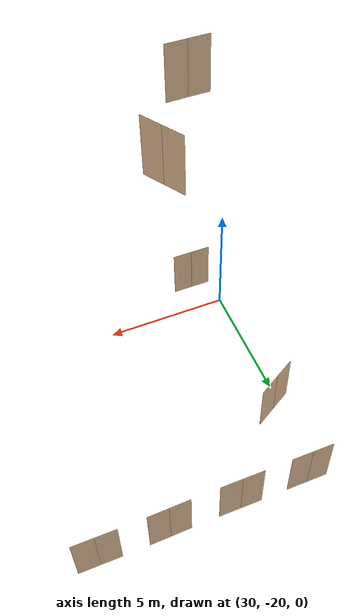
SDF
<sdf version="1.7">
 <world name="sim_world">
  <model name="part1_5">
   <pose>30.62381580076393 -10.732564106341501 0.0 0 0 3.1325331828849774</pose>
   <link name="right">
    <pose>0.4033982302911093 0 1.11 0 0 0</pose>
    <visual name="right_visual">
     <geometry><box><size>0.7967964605822186 0.03 2.2</size></box></geometry>
     <material>
      <ambient>0.5 0.25 0 0.6</ambient>
      <diffuse>0.5 0.25 0 0.6</diffuse>
      <pbr><metal><metalness>0.0</metalness></metal></pbr>
     </material>
    </visual>
    <collision name="right_collision">
     <geometry><box><size>0.7967964605822186 0.03 2.2</size></box></geometry>
     <surface><contact><collide_bitmask>0x02</collide_bitmask></contact></surface>
    </collision>
    <inertial>
     <mass>50.0</mass>
     <inertia><ixx>20.17041666666667</ixx><iyy>22.8120191649848</iyy><izz>2.64910249831813</izz></inertia>
    </inertial>
   </link>
   <joint name="right_joint" type="revolute">
    <parent>world</parent>
    <child>right</child>
    <axis><xyz>0 0 1</xyz><limit><lower>0</lower><upper>1.57</upper></limit></axis>
    <pose>0.4033982302911093 0 0 0 0 0</pose>
   </joint>
   <link name="left">
    <pose>-0.4033982302911093 0 1.11 0 0 0</pose>
    <visual name="left_visual">
     <geometry><box><size>0.7967964605822186 0.03 2.2</size></box></geometry>
     <material>
      <ambient>0.5 0.25 0 0.6</ambient>
      <diffuse>0.5 0.25 0 0.6</diffuse>
      <pbr><metal><metalness>0.0</metalness></metal></pbr>
     </material>
    </visual>
    <collision name="left_collision">
     <geometry><box><size>0.7967964605822186 0.03 2.2</size></box></geometry>
     <surface><contact><collide_bitmask>0x02</collide_bitmask></contact></surface>
    </collision>
    <inertial>
     <mass>50.0</mass>
     <inertia><ixx>20.17041666666667</ixx><iyy>22.8120191649848</iyy><izz>2.64910249831813</izz></inertia>
    </inertial>
   </link>
   <joint name="left_joint" type="revolute">
    <parent>world</parent>
    <child>left</child>
    <axis><xyz>0 0 1</xyz><limit><lower>-1.57</lower><upper>0</upper></limit></axis>
    <pose>-0.4033982302911093 0 0 0 0 0</pose>
   </joint>
   <plugin name="register_component" filename="libregister_component.so">
    <component name="Door">
     <v_max_door>0.5</v_max_door>
     <a_max_door>0.3</a_max_door>
     <a_nom_door>0.15</a_nom_door>
     <dx_min_door>0.01</dx_min_door>
     <f_max_door>500.0</f_max_door>
     <ros_interface>true</ros_interface>
     <door name="part1_5" type="DoubleSwingDoor" left_joint_name="left_joint" right_joint_name="right_joint"/>
    </component>
   </plugin>
  </model>
  <model name="part1_6">
   <pose>33.303837845168346 -10.745754091436014 0.0 0 0 3.134548012368475</pose>
   <link name="right">
    <pose>0.4174083984026789 0 1.11 0 0 0</pose>
    <visual name="right_visual">
     <geometry><box><size>0.8248167968053578 0.03 2.2</size></box></geometry>
     <material>
      <ambient>0.5 0.25 0 0.6</ambient>
      <diffuse>0.5 0.25 0 0.6</diffuse>
      <pbr><metal><metalness>0.0</metalness></metal></pbr>
     </material>
    </visual>
    <collision name="right_collision">
     <geometry><box><size>0.8248167968053578 0.03 2.2</size></box></geometry>
     <surface><contact><collide_bitmask>0x02</collide_bitmask></contact></surface>
    </collision>
    <inertial>
     <mass>50.0</mass>
     <inertia><ixx>20.17041666666667</ixx><iyy>23.001344784551048</iyy><izz>2.838428117884379</izz></inertia>
    </inertial>
   </link>
   <joint name="right_joint" type="revolute">
    <parent>world</parent>
    <child>right</child>
    <axis><xyz>0 0 1</xyz><limit><lower>0</lower><upper>1.57</upper></limit></axis>
    <pose>0.4174083984026789 0 0 0 0 0</pose>
   </joint>
   <link name="left">
    <pose>-0.4174083984026789 0 1.11 0 0 0</pose>
    <visual name="left_visual">
     <geometry><box><size>0.8248167968053578 0.03 2.2</size></box></geometry>
     <material>
      <ambient>0.5 0.25 0 0.6</ambient>
      <diffuse>0.5 0.25 0 0.6</diffuse>
      <pbr><metal><metalness>0.0</metalness></metal></pbr>
     </material>
    </visual>
    <collision name="left_collision">
     <geometry><box><size>0.8248167968053578 0.03 2.2</size></box></geometry>
     <surface><contact><collide_bitmask>0x02</collide_bitmask></contact></surface>
    </collision>
    <inertial>
     <mass>50.0</mass>
     <inertia><ixx>20.17041666666667</ixx><iyy>23.001344784551048</iyy><izz>2.838428117884379</izz></inertia>
    </inertial>
   </link>
   <joint name="left_joint" type="revolute">
    <parent>world</parent>
    <child>left</child>
    <axis><xyz>0 0 1</xyz><limit><lower>-1.57</lower><upper>0</upper></limit></axis>
    <pose>-0.4174083984026789 0 0 0 0 0</pose>
   </joint>
   <plugin name="register_component" filename="libregister_component.so">
    <component name="Door">
     <v_max_door>0.5</v_max_door>
     <a_max_door>0.3</a_max_door>
     <a_nom_door>0.15</a_nom_door>
     <dx_min_door>0.01</dx_min_door>
     <f_max_door>500.0</f_max_door>
     <ros_interface>true</ros_interface>
     <door name="part1_6" type="DoubleSwingDoor" left_joint_name="left_joint" right_joint_name="right_joint"/>
    </component>
   </plugin>
  </model>
  <model name="part1_7">
   <pose>35.98657169916032 -10.742288109951325 0.0 0 0 -3.1297649534100933</pose>
   <link name="right">
    <pose>0.3951374930538005 0 1.11 0 0 0</pose>
    <visual name="right_visual">
     <geometry><box><size>0.780274986107601 0.03 2.2</size></box></geometry>
     <material>
      <ambient>0.5 0.25 0 0.6</ambient>
      <diffuse>0.5 0.25 0 0.6</diffuse>
      <pbr><metal><metalness>0.0</metalness></metal></pbr>
     </material>
    </visual>
    <collision name="right_collision">
     <geometry><box><size>0.780274986107601 0.03 2.2</size></box></geometry>
     <surface><contact><collide_bitmask>0x02</collide_bitmask></contact></surface>
    </collision>
    <inertial>
     <mass>50.0</mass>
     <inertia><ixx>20.17041666666667</ixx><iyy>22.70345439143841</iyy><izz>2.540537724771738</izz></inertia>
    </inertial>
   </link>
   <joint name="right_joint" type="revolute">
    <parent>world</parent>
    <child>right</child>
    <axis><xyz>0 0 1</xyz><limit><lower>0</lower><upper>1.57</upper></limit></axis>
    <pose>0.3951374930538005 0 0 0 0 0</pose>
   </joint>
   <link name="left">
    <pose>-0.3951374930538005 0 1.11 0 0 0</pose>
    <visual name="left_visual">
     <geometry><box><size>0.780274986107601 0.03 2.2</size></box></geometry>
     <material>
      <ambient>0.5 0.25 0 0.6</ambient>
      <diffuse>0.5 0.25 0 0.6</diffuse>
      <pbr><metal><metalness>0.0</metalness></metal></pbr>
     </material>
    </visual>
    <collision name="left_collision">
     <geometry><box><size>0.780274986107601 0.03 2.2</size></box></geometry>
     <surface><contact><collide_bitmask>0x02</collide_bitmask></contact></surface>
    </collision>
    <inertial>
     <mass>50.0</mass>
     <inertia><ixx>20.17041666666667</ixx><iyy>22.70345439143841</iyy><izz>2.540537724771738</izz></inertia>
    </inertial>
   </link>
   <joint name="left_joint" type="revolute">
    <parent>world</parent>
    <child>left</child>
    <axis><xyz>0 0 1</xyz><limit><lower>-1.57</lower><upper>0</upper></limit></axis>
    <pose>-0.3951374930538005 0 0 0 0 0</pose>
   </joint>
   <plugin name="register_component" filename="libregister_component.so">
    <component name="Door">
     <v_max_door>0.5</v_max_door>
     <a_max_door>0.3</a_max_door>
     <a_nom_door>0.15</a_nom_door>
     <dx_min_door>0.01</dx_min_door>
     <f_max_door>500.0</f_max_door>
     <ros_interface>true</ros_interface>
     <door name="part1_7" type="DoubleSwingDoor" left_joint_name="left_joint" right_joint_name="right_joint"/>
    </component>
   </plugin>
  </model>
  <model name="part1_8">
   <pose>38.57675903364792 -10.742207878898437 0.0 0 0 3.1300311442483824</pose>
   <link name="right">
    <pose>0.40076484747594776 0 1.11 0 0 0</pose>
    <visual name="right_visual">
     <geometry><box><size>0.7915296949518955 0.03 2.2</size></box></geometry>
     <material>
      <ambient>0.5 0.25 0 0.6</ambient>
      <diffuse>0.5 0.25 0 0.6</diffuse>
      <pbr><metal><metalness>0.0</metalness></metal></pbr>
     </material>
    </visual>
    <collision name="right_collision">
     <geometry><box><size>0.7915296949518955 0.03 2.2</size></box></geometry>
     <surface><contact><collide_bitmask>0x02</collide_bitmask></contact></surface>
    </collision>
    <inertial>
     <mass>50.0</mass>
     <inertia><ixx>20.17041666666667</ixx><iyy>22.777163574961005</iyy><izz>2.6142469082943367</izz></inertia>
    </inertial>
   </link>
   <joint name="right_joint" type="revolute">
    <parent>world</parent>
    <child>right</child>
    <axis><xyz>0 0 1</xyz><limit><lower>0</lower><upper>1.57</upper></limit></axis>
    <pose>0.40076484747594776 0 0 0 0 0</pose>
   </joint>
   <link name="left">
    <pose>-0.40076484747594776 0 1.11 0 0 0</pose>
    <visual name="left_visual">
     <geometry><box><size>0.7915296949518955 0.03 2.2</size></box></geometry>
     <material>
      <ambient>0.5 0.25 0 0.6</ambient>
      <diffuse>0.5 0.25 0 0.6</diffuse>
      <pbr><metal><metalness>0.0</metalness></metal></pbr>
     </material>
    </visual>
    <collision name="left_collision">
     <geometry><box><size>0.7915296949518955 0.03 2.2</size></box></geometry>
     <surface><contact><collide_bitmask>0x02</collide_bitmask></contact></surface>
    </collision>
    <inertial>
     <mass>50.0</mass>
     <inertia><ixx>20.17041666666667</ixx><iyy>22.777163574961005</iyy><izz>2.6142469082943367</izz></inertia>
    </inertial>
   </link>
   <joint name="left_joint" type="revolute">
    <parent>world</parent>
    <child>left</child>
    <axis><xyz>0 0 1</xyz><limit><lower>-1.57</lower><upper>0</upper></limit></axis>
    <pose>-0.40076484747594776 0 0 0 0 0</pose>
   </joint>
   <plugin name="register_component" filename="libregister_component.so">
    <component name="Door">
     <v_max_door>0.5</v_max_door>
     <a_max_door>0.3</a_max_door>
     <a_nom_door>0.15</a_nom_door>
     <dx_min_door>0.01</dx_min_door>
     <f_max_door>500.0</f_max_door>
     <ros_interface>true</ros_interface>
     <door name="part1_8" type="DoubleSwingDoor" left_joint_name="left_joint" right_joint_name="right_joint"/>
    </component>
   </plugin>
  </model>
  <model name="part1_4">
   <pose>30.361404096088606 -14.032708004714948 0.0 0 0 -2.62655505252304</pose>
   <link name="right">
    <pose>0.4545178244978947 0 1.11 0 0 0</pose>
    <visual name="right_visual">
     <geometry><box><size>0.8990356489957894 0.03 2.2</size></box></geometry>
     <material>
      <ambient>0.5 0.25 0 0.6</ambient>
      <diffuse>0.5 0.25 0 0.6</diffuse>
      <pbr><metal><metalness>0.0</metalness></metal></pbr>
     </material>
    </visual>
    <collision name="right_collision">
     <geometry><box><size>0.8990356489957894 0.03 2.2</size></box></geometry>
     <surface><contact><collide_bitmask>0x02</collide_bitmask></contact></surface>
    </collision>
    <inertial>
     <mass>50.0</mass>
     <inertia><ixx>20.17041666666667</ixx><iyy>23.534437909022003</iyy><izz>3.371521242355334</izz></inertia>
    </inertial>
   </link>
   <joint name="right_joint" type="revolute">
    <parent>world</parent>
    <child>right</child>
    <axis><xyz>0 0 1</xyz><limit><lower>0</lower><upper>1.57</upper></limit></axis>
    <pose>0.4545178244978947 0 0 0 0 0</pose>
   </joint>
   <link name="left">
    <pose>-0.4545178244978947 0 1.11 0 0 0</pose>
    <visual name="left_visual">
     <geometry><box><size>0.8990356489957894 0.03 2.2</size></box></geometry>
     <material>
      <ambient>0.5 0.25 0 0.6</ambient>
      <diffuse>0.5 0.25 0 0.6</diffuse>
      <pbr><metal><metalness>0.0</metalness></metal></pbr>
     </material>
    </visual>
    <collision name="left_collision">
     <geometry><box><size>0.8990356489957894 0.03 2.2</size></box></geometry>
     <surface><contact><collide_bitmask>0x02</collide_bitmask></contact></surface>
    </collision>
    <inertial>
     <mass>50.0</mass>
     <inertia><ixx>20.17041666666667</ixx><iyy>23.534437909022003</iyy><izz>3.371521242355334</izz></inertia>
    </inertial>
   </link>
   <joint name="left_joint" type="revolute">
    <parent>world</parent>
    <child>left</child>
    <axis><xyz>0 0 1</xyz><limit><lower>-1.57</lower><upper>0</upper></limit></axis>
    <pose>-0.4545178244978947 0 0 0 0 0</pose>
   </joint>
   <plugin name="register_component" filename="libregister_component.so">
    <component name="Door">
     <v_max_door>0.5</v_max_door>
     <a_max_door>0.3</a_max_door>
     <a_nom_door>0.15</a_nom_door>
     <dx_min_door>0.01</dx_min_door>
     <f_max_door>500.0</f_max_door>
     <ros_interface>true</ros_interface>
     <door name="part1_4" type="DoubleSwingDoor" left_joint_name="left_joint" right_joint_name="right_joint"/>
    </component>
   </plugin>
  </model>
  <model name="part1_9">
   <pose>30.839613263712295 -21.2473811351495 0.0 0 0 -3.1402743417935888</pose>
   <link name="right">
    <pose>0.4016690922096701 0 1.11 0 0 0</pose>
    <visual name="right_visual">
     <geometry><box><size>0.7933381844193402 0.03 2.2</size></box></geometry>
     <material>
      <ambient>0.5 0.25 0 0.6</ambient>
      <diffuse>0.5 0.25 0 0.6</diffuse>
      <pbr><metal><metalness>0.0</metalness></metal></pbr>
     </material>
    </visual>
    <collision name="right_collision">
     <geometry><box><size>0.7933381844193402 0.03 2.2</size></box></geometry>
     <surface><contact><collide_bitmask>0x02</collide_bitmask></contact></surface>
    </collision>
    <inertial>
     <mass>50.0</mass>
     <inertia><ixx>20.17041666666667</ixx><iyy>22.789106145240737</iyy><izz>2.626189478574063</izz></inertia>
    </inertial>
   </link>
   <joint name="right_joint" type="revolute">
    <parent>world</parent>
    <child>right</child>
    <axis><xyz>0 0 1</xyz><limit><lower>0</lower><upper>1.57</upper></limit></axis>
    <pose>0.4016690922096701 0 0 0 0 0</pose>
   </joint>
   <link name="left">
    <pose>-0.4016690922096701 0 1.11 0 0 0</pose>
    <visual name="left_visual">
     <geometry><box><size>0.7933381844193402 0.03 2.2</size></box></geometry>
     <material>
      <ambient>0.5 0.25 0 0.6</ambient>
      <diffuse>0.5 0.25 0 0.6</diffuse>
      <pbr><metal><metalness>0.0</metalness></metal></pbr>
     </material>
    </visual>
    <collision name="left_collision">
     <geometry><box><size>0.7933381844193402 0.03 2.2</size></box></geometry>
     <surface><contact><collide_bitmask>0x02</collide_bitmask></contact></surface>
    </collision>
    <inertial>
     <mass>50.0</mass>
     <inertia><ixx>20.17041666666667</ixx><iyy>22.789106145240737</iyy><izz>2.626189478574063</izz></inertia>
    </inertial>
   </link>
   <joint name="left_joint" type="revolute">
    <parent>world</parent>
    <child>left</child>
    <axis><xyz>0 0 1</xyz><limit><lower>-1.57</lower><upper>0</upper></limit></axis>
    <pose>-0.4016690922096701 0 0 0 0 0</pose>
   </joint>
   <plugin name="register_component" filename="libregister_component.so">
    <component name="Door">
     <v_max_door>0.5</v_max_door>
     <a_max_door>0.3</a_max_door>
     <a_nom_door>0.15</a_nom_door>
     <dx_min_door>0.01</dx_min_door>
     <f_max_door>500.0</f_max_door>
     <ros_interface>true</ros_interface>
     <door name="part1_9" type="DoubleSwingDoor" left_joint_name="left_joint" right_joint_name="right_joint"/>
    </component>
   </plugin>
  </model>
  <model name="L3_part5_2">
   <pose>30.881842683412945 -21.220969909646946 10.0 0 0 -3.120648061489597</pose>
   <link name="right">
    <pose>0.4218044456970233 0 1.11 0 0 0</pose>
    <visual name="right_visual">
     <geometry><box><size>0.8336088913940466 0.03 2.2</size></box></geometry>
     <material>
      <ambient>0.5 0.25 0 0.6</ambient>
      <diffuse>0.5 0.25 0 0.6</diffuse>
      <pbr><metal><metalness>0.0</metalness></metal></pbr>
     </material>
    </visual>
    <collision name="right_collision">
     <geometry><box><size>0.8336088913940466 0.03 2.2</size></box></geometry>
     <surface><contact><collide_bitmask>0x02</collide_bitmask></contact></surface>
    </collision>
    <inertial>
     <mass>50.0</mass>
     <inertia><ixx>20.17041666666667</ixx><iyy>23.062099099213388</iyy><izz>2.899182432546714</izz></inertia>
    </inertial>
   </link>
   <joint name="right_joint" type="revolute">
    <parent>world</parent>
    <child>right</child>
    <axis><xyz>0 0 1</xyz><limit><lower>0</lower><upper>1.57</upper></limit></axis>
    <pose>0.4218044456970233 0 0 0 0 0</pose>
   </joint>
   <link name="left">
    <pose>-0.4218044456970233 0 1.11 0 0 0</pose>
    <visual name="left_visual">
     <geometry><box><size>0.8336088913940466 0.03 2.2</size></box></geometry>
     <material>
      <ambient>0.5 0.25 0 0.6</ambient>
      <diffuse>0.5 0.25 0 0.6</diffuse>
      <pbr><metal><metalness>0.0</metalness></metal></pbr>
     </material>
    </visual>
    <collision name="left_collision">
     <geometry><box><size>0.8336088913940466 0.03 2.2</size></box></geometry>
     <surface><contact><collide_bitmask>0x02</collide_bitmask></contact></surface>
    </collision>
    <inertial>
     <mass>50.0</mass>
     <inertia><ixx>20.17041666666667</ixx><iyy>23.062099099213388</iyy><izz>2.899182432546714</izz></inertia>
    </inertial>
   </link>
   <joint name="left_joint" type="revolute">
    <parent>world</parent>
    <child>left</child>
    <axis><xyz>0 0 1</xyz><limit><lower>-1.57</lower><upper>0</upper></limit></axis>
    <pose>-0.4218044456970233 0 0 0 0 0</pose>
   </joint>
   <plugin name="register_component" filename="libregister_component.so">
    <component name="Door">
     <v_max_door>0.5</v_max_door>
     <a_max_door>0.3</a_max_door>
     <a_nom_door>0.15</a_nom_door>
     <dx_min_door>0.01</dx_min_door>
     <f_max_door>500.0</f_max_door>
     <ros_interface>true</ros_interface>
     <door name="L3_part5_2" type="DoubleSwingDoor" left_joint_name="left_joint" right_joint_name="right_joint"/>
    </component>
   </plugin>
  </model>
  <model name="L3_part5_3">
   <pose>33.3155144182428 -17.255894773535758 10.0 0 0 2.096915206720529</pose>
   <link name="right">
    <pose>0.41587553377156333 0 1.11 0 0 0</pose>
    <visual name="right_visual">
     <geometry><box><size>0.8217510675431267 0.03 2.2</size></box></geometry>
     <material>
      <ambient>0.5 0.25 0 0.6</ambient>
      <diffuse>0.5 0.25 0 0.6</diffuse>
      <pbr><metal><metalness>0.0</metalness></metal></pbr>
     </material>
    </visual>
    <collision name="right_collision">
     <geometry><box><size>0.8217510675431267 0.03 2.2</size></box></geometry>
     <surface><contact><collide_bitmask>0x02</collide_bitmask></contact></surface>
    </collision>
    <inertial>
     <mass>50.0</mass>
     <inertia><ixx>20.17041666666667</ixx><iyy>22.980311737534453</iyy><izz>2.817395070867785</izz></inertia>
    </inertial>
   </link>
   <joint name="right_joint" type="revolute">
    <parent>world</parent>
    <child>right</child>
    <axis><xyz>0 0 -1</xyz><limit><lower>0</lower><upper>1.57</upper></limit></axis>
    <pose>0.41587553377156333 0 0 0 0 0</pose>
   </joint>
   <link name="left">
    <pose>-0.41587553377156333 0 1.11 0 0 0</pose>
    <visual name="left_visual">
     <geometry><box><size>0.8217510675431267 0.03 2.2</size></box></geometry>
     <material>
      <ambient>0.5 0.25 0 0.6</ambient>
      <diffuse>0.5 0.25 0 0.6</diffuse>
      <pbr><metal><metalness>0.0</metalness></metal></pbr>
     </material>
    </visual>
    <collision name="left_collision">
     <geometry><box><size>0.8217510675431267 0.03 2.2</size></box></geometry>
     <surface><contact><collide_bitmask>0x02</collide_bitmask></contact></surface>
    </collision>
    <inertial>
     <mass>50.0</mass>
     <inertia><ixx>20.17041666666667</ixx><iyy>22.980311737534453</iyy><izz>2.817395070867785</izz></inertia>
    </inertial>
   </link>
   <joint name="left_joint" type="revolute">
    <parent>world</parent>
    <child>left</child>
    <axis><xyz>0 0 -1</xyz><limit><lower>-1.57</lower><upper>0</upper></limit></axis>
    <pose>-0.41587553377156333 0 0 0 0 0</pose>
   </joint>
   <plugin name="register_component" filename="libregister_component.so">
    <component name="Door">
     <v_max_door>0.5</v_max_door>
     <a_max_door>0.3</a_max_door>
     <a_nom_door>0.15</a_nom_door>
     <dx_min_door>0.01</dx_min_door>
     <f_max_door>500.0</f_max_door>
     <ros_interface>true</ros_interface>
     <door name="L3_part5_3" type="DoubleSwingDoor" left_joint_name="left_joint" right_joint_name="right_joint"/>
    </component>
   </plugin>
  </model>
 </world>
</sdf>
